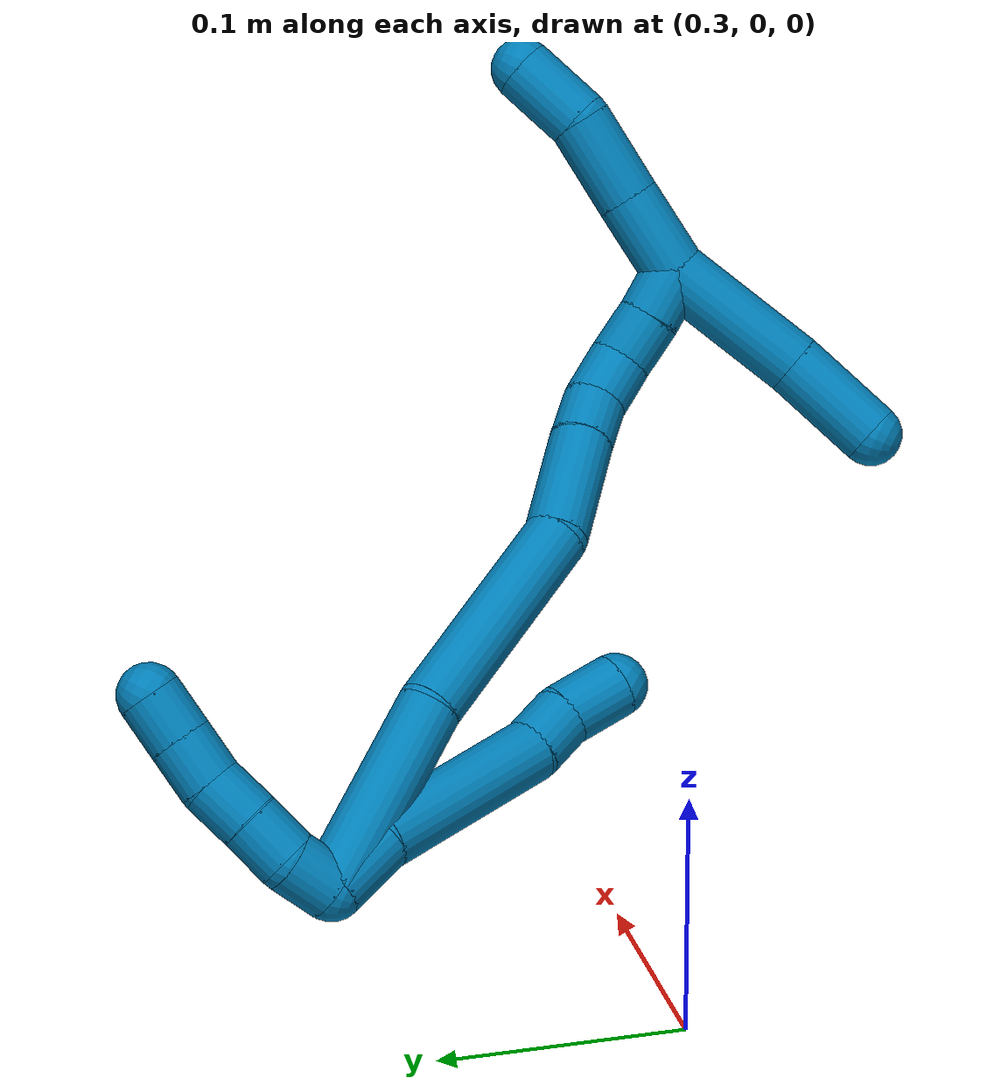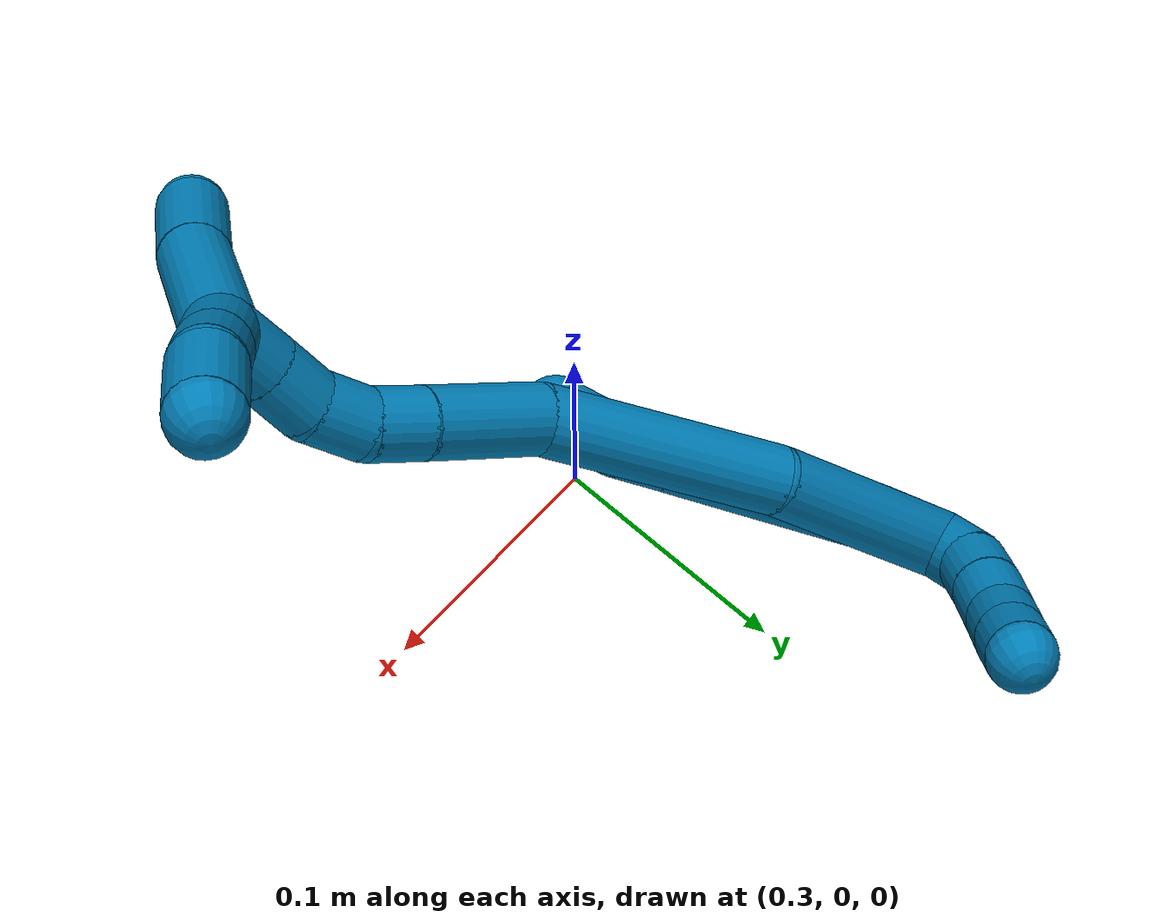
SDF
<sdf version="1.7">
 <world name="default">
  <model name="9">
   <static>0</static>
   <link name="9">
    <collision name="collision-cylinder-e_1_2_8">
     <pose>0.011123 -0.00804 -0.003483 1.97964 0.90359 1.27299</pose>
     <geometry><cylinder><radius>0.0125</radius><length>0.02832</length></cylinder></geometry>
     <surface>
      <friction><ode><mu>1.16</mu><mu2>1.16</mu2><slip1>0</slip1><slip2>0</slip2></ode></friction>
      <contact><ode><kp>1e+06</kp><kd>1</kd><max_vel>0</max_vel><min_depth>0.001</min_depth></ode></contact>
     </surface>
    </collision>
    <visual name="visual-cylinder-e_1_2_8">
     <pose>0.011123 -0.00804 -0.003483 1.97964 0.90359 1.27299</pose>
     <geometry><cylinder><radius>0.0125</radius><length>0.02832</length></cylinder></geometry>
     <material><ambient>0 0.490196 0.709804 1</ambient></material>
    </visual>
    <collision name="collision-cylinder-e_2_8_9">
     <pose>0.054897 -0.029359 -0.021715 2.40855 1.02464 1.94376</pose>
     <geometry><cylinder><radius>0.0125</radius><length>0.076418</length></cylinder></geometry>
     <surface>
      <friction><ode><mu>1.16</mu><mu2>1.16</mu2><slip1>0</slip1><slip2>0</slip2></ode></friction>
      <contact><ode><kp>1e+06</kp><kd>1</kd><max_vel>0</max_vel><min_depth>0.001</min_depth></ode></contact>
     </surface>
    </collision>
    <visual name="visual-cylinder-e_2_8_9">
     <pose>0.054897 -0.029359 -0.021715 2.40855 1.02464 1.94376</pose>
     <geometry><cylinder><radius>0.0125</radius><length>0.076418</length></cylinder></geometry>
     <material><ambient>0 0.490196 0.709804 1</ambient></material>
    </visual>
    <collision name="collision-cylinder-e_3_9_10">
     <pose>0.096024 -0.047751 -0.038343 1.92307 0.999717 1.32809</pose>
     <geometry><cylinder><radius>0.0125</radius><length>0.02015</length></cylinder></geometry>
     <surface>
      <friction><ode><mu>1.16</mu><mu2>1.16</mu2><slip1>0</slip1><slip2>0</slip2></ode></friction>
      <contact><ode><kp>1e+06</kp><kd>1</kd><max_vel>0</max_vel><min_depth>0.001</min_depth></ode></contact>
     </surface>
    </collision>
    <visual name="visual-cylinder-e_3_9_10">
     <pose>0.096024 -0.047751 -0.038343 1.92307 0.999717 1.32809</pose>
     <geometry><cylinder><radius>0.0125</radius><length>0.02015</length></cylinder></geometry>
     <material><ambient>0 0.490196 0.709804 1</ambient></material>
    </visual>
    <collision name="collision-cylinder-e_4_10_6">
     <pose>0.113672 -0.059099 -0.046107 2.32719 0.818967 1.57706</pose>
     <geometry><cylinder><radius>0.0125</radius><length>0.025112</length></cylinder></geometry>
     <surface>
      <friction><ode><mu>1.16</mu><mu2>1.16</mu2><slip1>0</slip1><slip2>0</slip2></ode></friction>
      <contact><ode><kp>1e+06</kp><kd>1</kd><max_vel>0</max_vel><min_depth>0.001</min_depth></ode></contact>
     </surface>
    </collision>
    <visual name="visual-cylinder-e_4_10_6">
     <pose>0.113672 -0.059099 -0.046107 2.32719 0.818967 1.57706</pose>
     <geometry><cylinder><radius>0.0125</radius><length>0.025112</length></cylinder></geometry>
     <material><ambient>0 0.490196 0.709804 1</ambient></material>
    </visual>
    <collision name="collision-cylinder-e_1_2_11">
     <pose>-0.002938 -0.003001 0.009075 0.319331 -0.298206 -0.048372</pose>
     <geometry><cylinder><radius>0.0125</radius><length>0.02</length></cylinder></geometry>
     <surface>
      <friction><ode><mu>1.16</mu><mu2>1.16</mu2><slip1>0</slip1><slip2>0</slip2></ode></friction>
      <contact><ode><kp>1e+06</kp><kd>1</kd><max_vel>0</max_vel><min_depth>0.001</min_depth></ode></contact>
     </surface>
    </collision>
    <visual name="visual-cylinder-e_1_2_11">
     <pose>-0.002938 -0.003001 0.009075 0.319331 -0.298206 -0.048372</pose>
     <geometry><cylinder><radius>0.0125</radius><length>0.02</length></cylinder></geometry>
     <material><ambient>0 0.490196 0.709804 1</ambient></material>
    </visual>
    <collision name="collision-cylinder-e_2_11_12">
     <pose>-0.005525 -0.009477 0.027521 0.355158 0.035071 0.006295</pose>
     <geometry><cylinder><radius>0.0125</radius><length>0.02</length></cylinder></geometry>
     <surface>
      <friction><ode><mu>1.16</mu><mu2>1.16</mu2><slip1>0</slip1><slip2>0</slip2></ode></friction>
      <contact><ode><kp>1e+06</kp><kd>1</kd><max_vel>0</max_vel><min_depth>0.001</min_depth></ode></contact>
     </surface>
    </collision>
    <visual name="visual-cylinder-e_2_11_12">
     <pose>-0.005525 -0.009477 0.027521 0.355158 0.035071 0.006295</pose>
     <geometry><cylinder><radius>0.0125</radius><length>0.02</length></cylinder></geometry>
     <material><ambient>0 0.490196 0.709804 1</ambient></material>
    </visual>
    <collision name="collision-cylinder-e_3_12_13">
     <pose>-0.00453 -0.0159 0.046425 0.299871 0.064559 0.009756</pose>
     <geometry><cylinder><radius>0.0125</radius><length>0.02</length></cylinder></geometry>
     <surface>
      <friction><ode><mu>1.16</mu><mu2>1.16</mu2><slip1>0</slip1><slip2>0</slip2></ode></friction>
      <contact><ode><kp>1e+06</kp><kd>1</kd><max_vel>0</max_vel><min_depth>0.001</min_depth></ode></contact>
     </surface>
    </collision>
    <visual name="visual-cylinder-e_3_12_13">
     <pose>-0.00453 -0.0159 0.046425 0.299871 0.064559 0.009756</pose>
     <geometry><cylinder><radius>0.0125</radius><length>0.02</length></cylinder></geometry>
     <material><ambient>0 0.490196 0.709804 1</ambient></material>
    </visual>
    <collision name="collision-cylinder-e_4_13_14">
     <pose>-0.002668 -0.023636 0.064653 0.503469 0.12193 0.031396</pose>
     <geometry><cylinder><radius>0.0125</radius><length>0.02</length></cylinder></geometry>
     <surface>
      <friction><ode><mu>1.16</mu><mu2>1.16</mu2><slip1>0</slip1><slip2>0</slip2></ode></friction>
      <contact><ode><kp>1e+06</kp><kd>1</kd><max_vel>0</max_vel><min_depth>0.001</min_depth></ode></contact>
     </surface>
    </collision>
    <visual name="visual-cylinder-e_4_13_14">
     <pose>-0.002668 -0.023636 0.064653 0.503469 0.12193 0.031396</pose>
     <geometry><cylinder><radius>0.0125</radius><length>0.02</length></cylinder></geometry>
     <material><ambient>0 0.490196 0.709804 1</ambient></material>
    </visual>
    <collision name="collision-cylinder-e_5_14_5">
     <pose>-0.000447 -0.033344 0.081996 0.517073 0.100702 0.026652</pose>
     <geometry><cylinder><radius>0.0125</radius><length>0.02</length></cylinder></geometry>
     <surface>
      <friction><ode><mu>1.16</mu><mu2>1.16</mu2><slip1>0</slip1><slip2>0</slip2></ode></friction>
      <contact><ode><kp>1e+06</kp><kd>1</kd><max_vel>0</max_vel><min_depth>0.001</min_depth></ode></contact>
     </surface>
    </collision>
    <visual name="visual-cylinder-e_5_14_5">
     <pose>-0.000447 -0.033344 0.081996 0.517073 0.100702 0.026652</pose>
     <geometry><cylinder><radius>0.0125</radius><length>0.02</length></cylinder></geometry>
     <material><ambient>0 0.490196 0.709804 1</ambient></material>
    </visual>
    <collision name="collision-cylinder-e_1_2_15">
     <pose>0.028545 -0.028099 0.000503 1.55291 0.793186 0.780517</pose>
     <geometry><cylinder><radius>0.0125</radius><length>0.080115</length></cylinder></geometry>
     <surface>
      <friction><ode><mu>1.16</mu><mu2>1.16</mu2><slip1>0</slip1><slip2>0</slip2></ode></friction>
      <contact><ode><kp>1e+06</kp><kd>1</kd><max_vel>0</max_vel><min_depth>0.001</min_depth></ode></contact>
     </surface>
    </collision>
    <visual name="visual-cylinder-e_1_2_15">
     <pose>0.028545 -0.028099 0.000503 1.55291 0.793186 0.780517</pose>
     <geometry><cylinder><radius>0.0125</radius><length>0.080115</length></cylinder></geometry>
     <material><ambient>0 0.490196 0.709804 1</ambient></material>
    </visual>
    <collision name="collision-cylinder-e_2_15_16">
     <pose>0.094853 -0.081187 -0.003082 1.73294 0.980124 1.12125</pose>
     <geometry><cylinder><radius>0.0125</radius><length>0.090934</length></cylinder></geometry>
     <surface>
      <friction><ode><mu>1.16</mu><mu2>1.16</mu2><slip1>0</slip1><slip2>0</slip2></ode></friction>
      <contact><ode><kp>1e+06</kp><kd>1</kd><max_vel>0</max_vel><min_depth>0.001</min_depth></ode></contact>
     </surface>
    </collision>
    <visual name="visual-cylinder-e_2_15_16">
     <pose>0.094853 -0.081187 -0.003082 1.73294 0.980124 1.12125</pose>
     <geometry><cylinder><radius>0.0125</radius><length>0.090934</length></cylinder></geometry>
     <material><ambient>0 0.490196 0.709804 1</ambient></material>
    </visual>
    <collision name="collision-cylinder-e_3_16_17">
     <pose>0.151939 -0.117262 -0.001738 1.11515 1.0023 0.658331</pose>
     <geometry><cylinder><radius>0.0125</radius><length>0.045859</length></cylinder></geometry>
     <surface>
      <friction><ode><mu>1.16</mu><mu2>1.16</mu2><slip1>0</slip1><slip2>0</slip2></ode></friction>
      <contact><ode><kp>1e+06</kp><kd>1</kd><max_vel>0</max_vel><min_depth>0.001</min_depth></ode></contact>
     </surface>
    </collision>
    <visual name="visual-cylinder-e_3_16_17">
     <pose>0.151939 -0.117262 -0.001738 1.11515 1.0023 0.658331</pose>
     <geometry><cylinder><radius>0.0125</radius><length>0.045859</length></cylinder></geometry>
     <material><ambient>0 0.490196 0.709804 1</ambient></material>
    </visual>
    <collision name="collision-cylinder-e_4_17_18">
     <pose>0.180326 -0.133173 0.005673 1.18175 1.04862 0.740121</pose>
     <geometry><cylinder><radius>0.0125</radius><length>0.020915</length></cylinder></geometry>
     <surface>
      <friction><ode><mu>1.16</mu><mu2>1.16</mu2><slip1>0</slip1><slip2>0</slip2></ode></friction>
      <contact><ode><kp>1e+06</kp><kd>1</kd><max_vel>0</max_vel><min_depth>0.001</min_depth></ode></contact>
     </surface>
    </collision>
    <visual name="visual-cylinder-e_4_17_18">
     <pose>0.180326 -0.133173 0.005673 1.18175 1.04862 0.740121</pose>
     <geometry><cylinder><radius>0.0125</radius><length>0.020915</length></cylinder></geometry>
     <material><ambient>0 0.490196 0.709804 1</ambient></material>
    </visual>
    <collision name="collision-cylinder-e_5_18_19">
     <pose>0.197096 -0.145038 0.007352 1.61326 0.830144 0.861941</pose>
     <geometry><cylinder><radius>0.0125</radius><length>0.020882</length></cylinder></geometry>
     <surface>
      <friction><ode><mu>1.16</mu><mu2>1.16</mu2><slip1>0</slip1><slip2>0</slip2></ode></friction>
      <contact><ode><kp>1e+06</kp><kd>1</kd><max_vel>0</max_vel><min_depth>0.001</min_depth></ode></contact>
     </surface>
    </collision>
    <visual name="visual-cylinder-e_5_18_19">
     <pose>0.197096 -0.145038 0.007352 1.61326 0.830144 0.861941</pose>
     <geometry><cylinder><radius>0.0125</radius><length>0.020882</length></cylinder></geometry>
     <material><ambient>0 0.490196 0.709804 1</ambient></material>
    </visual>
    <collision name="collision-cylinder-e_6_19_20">
     <pose>0.209884 -0.160886 0.005768 1.71569 0.518768 0.595538</pose>
     <geometry><cylinder><radius>0.0125</radius><length>0.020501</length></cylinder></geometry>
     <surface>
      <friction><ode><mu>1.16</mu><mu2>1.16</mu2><slip1>0</slip1><slip2>0</slip2></ode></friction>
      <contact><ode><kp>1e+06</kp><kd>1</kd><max_vel>0</max_vel><min_depth>0.001</min_depth></ode></contact>
     </surface>
    </collision>
    <visual name="visual-cylinder-e_6_19_20">
     <pose>0.209884 -0.160886 0.005768 1.71569 0.518768 0.595538</pose>
     <geometry><cylinder><radius>0.0125</radius><length>0.020501</length></cylinder></geometry>
     <material><ambient>0 0.490196 0.709804 1</ambient></material>
    </visual>
    <collision name="collision-cylinder-e_7_20_1">
     <pose>0.220038 -0.178759 0.00404 1.61953 0.509593 0.533885</pose>
     <geometry><cylinder><radius>0.0125</radius><length>0.020794</length></cylinder></geometry>
     <surface>
      <friction><ode><mu>1.16</mu><mu2>1.16</mu2><slip1>0</slip1><slip2>0</slip2></ode></friction>
      <contact><ode><kp>1e+06</kp><kd>1</kd><max_vel>0</max_vel><min_depth>0.001</min_depth></ode></contact>
     </surface>
    </collision>
    <visual name="visual-cylinder-e_7_20_1">
     <pose>0.220038 -0.178759 0.00404 1.61953 0.509593 0.533885</pose>
     <geometry><cylinder><radius>0.0125</radius><length>0.020794</length></cylinder></geometry>
     <material><ambient>0 0.490196 0.709804 1</ambient></material>
    </visual>
    <collision name="collision-cylinder-e_1_1_21">
     <pose>0.227046 -0.180208 -0.024958 -2.88095 0.065411 -0.489255</pose>
     <geometry><cylinder><radius>0.0125</radius><length>0.059234</length></cylinder></geometry>
     <surface>
      <friction><ode><mu>1.16</mu><mu2>1.16</mu2><slip1>0</slip1><slip2>0</slip2></ode></friction>
      <contact><ode><kp>1e+06</kp><kd>1</kd><max_vel>0</max_vel><min_depth>0.001</min_depth></ode></contact>
     </surface>
    </collision>
    <visual name="visual-cylinder-e_1_1_21">
     <pose>0.227046 -0.180208 -0.024958 -2.88095 0.065411 -0.489255</pose>
     <geometry><cylinder><radius>0.0125</radius><length>0.059234</length></cylinder></geometry>
     <material><ambient>0 0.490196 0.709804 1</ambient></material>
    </visual>
    <collision name="collision-cylinder-e_2_21_4">
     <pose>0.228093 -0.166708 -0.073008 -2.84847 -0.043601 0.293287</pose>
     <geometry><cylinder><radius>0.0125</radius><length>0.040766</length></cylinder></geometry>
     <surface>
      <friction><ode><mu>1.16</mu><mu2>1.16</mu2><slip1>0</slip1><slip2>0</slip2></ode></friction>
      <contact><ode><kp>1e+06</kp><kd>1</kd><max_vel>0</max_vel><min_depth>0.001</min_depth></ode></contact>
     </surface>
    </collision>
    <visual name="visual-cylinder-e_2_21_4">
     <pose>0.228093 -0.166708 -0.073008 -2.84847 -0.043601 0.293287</pose>
     <geometry><cylinder><radius>0.0125</radius><length>0.040766</length></cylinder></geometry>
     <material><ambient>0 0.490196 0.709804 1</ambient></material>
    </visual>
    <collision name="collision-cylinder-e_1_1_22">
     <pose>0.226146 -0.196988 0.017794 0.573219 0.061264 0.018061</pose>
     <geometry><cylinder><radius>0.0125</radius><length>0.033857</length></cylinder></geometry>
     <surface>
      <friction><ode><mu>1.16</mu><mu2>1.16</mu2><slip1>0</slip1><slip2>0</slip2></ode></friction>
      <contact><ode><kp>1e+06</kp><kd>1</kd><max_vel>0</max_vel><min_depth>0.001</min_depth></ode></contact>
     </surface>
    </collision>
    <visual name="visual-cylinder-e_1_1_22">
     <pose>0.226146 -0.196988 0.017794 0.573219 0.061264 0.018061</pose>
     <geometry><cylinder><radius>0.0125</radius><length>0.033857</length></cylinder></geometry>
     <material><ambient>0 0.490196 0.709804 1</ambient></material>
    </visual>
    <collision name="collision-cylinder-e_2_22_23">
     <pose>0.227915 -0.216248 0.0468 0.598376 0.040861 0.012605</pose>
     <geometry><cylinder><radius>0.0125</radius><length>0.035878</length></cylinder></geometry>
     <surface>
      <friction><ode><mu>1.16</mu><mu2>1.16</mu2><slip1>0</slip1><slip2>0</slip2></ode></friction>
      <contact><ode><kp>1e+06</kp><kd>1</kd><max_vel>0</max_vel><min_depth>0.001</min_depth></ode></contact>
     </surface>
    </collision>
    <visual name="visual-cylinder-e_2_22_23">
     <pose>0.227915 -0.216248 0.0468 0.598376 0.040861 0.012605</pose>
     <geometry><cylinder><radius>0.0125</radius><length>0.035878</length></cylinder></geometry>
     <material><ambient>0 0.490196 0.709804 1</ambient></material>
    </visual>
    <collision name="collision-cylinder-e_3_23_3">
     <pose>0.229976 -0.23041 0.076125 0.273077 0.08784 0.012076</pose>
     <geometry><cylinder><radius>0.0125</radius><length>0.030265</length></cylinder></geometry>
     <surface>
      <friction><ode><mu>1.16</mu><mu2>1.16</mu2><slip1>0</slip1><slip2>0</slip2></ode></friction>
      <contact><ode><kp>1e+06</kp><kd>1</kd><max_vel>0</max_vel><min_depth>0.001</min_depth></ode></contact>
     </surface>
    </collision>
    <visual name="visual-cylinder-e_3_23_3">
     <pose>0.229976 -0.23041 0.076125 0.273077 0.08784 0.012076</pose>
     <geometry><cylinder><radius>0.0125</radius><length>0.030265</length></cylinder></geometry>
     <material><ambient>0 0.490196 0.709804 1</ambient></material>
    </visual>
    <collision name="collision-sphere-3">
     <pose>0.231303 -0.234476 0.090641 0 -0 0</pose>
     <geometry><sphere><radius>0.0125</radius></sphere></geometry>
     <surface>
      <friction><ode><mu>1.16</mu><mu2>1.16</mu2><slip1>0</slip1><slip2>0</slip2></ode></friction>
      <contact><ode><kp>1e+06</kp><kd>1</kd><max_vel>0</max_vel><min_depth>0.001</min_depth></ode></contact>
     </surface>
    </collision>
    <visual name="visual-sphere-3">
     <pose>0.231303 -0.234476 0.090641 0 -0 0</pose>
     <geometry><sphere><radius>0.0125</radius></sphere></geometry>
     <material><ambient>0 0.490196 0.709804 1</ambient></material>
    </visual>
    <collision name="collision-sphere-23">
     <pose>0.228648 -0.226345 0.061609 0 -0 0</pose>
     <geometry><sphere><radius>0.0125</radius></sphere></geometry>
     <surface>
      <friction><ode><mu>1.16</mu><mu2>1.16</mu2><slip1>0</slip1><slip2>0</slip2></ode></friction>
      <contact><ode><kp>1e+06</kp><kd>1</kd><max_vel>0</max_vel><min_depth>0.001</min_depth></ode></contact>
     </surface>
    </collision>
    <visual name="visual-sphere-23">
     <pose>0.228648 -0.226345 0.061609 0 -0 0</pose>
     <geometry><sphere><radius>0.0125</radius></sphere></geometry>
     <material><ambient>0 0.490196 0.709804 1</ambient></material>
    </visual>
    <collision name="collision-sphere-22">
     <pose>0.227183 -0.206152 0.03199 0 -0 0</pose>
     <geometry><sphere><radius>0.0125</radius></sphere></geometry>
     <surface>
      <friction><ode><mu>1.16</mu><mu2>1.16</mu2><slip1>0</slip1><slip2>0</slip2></ode></friction>
      <contact><ode><kp>1e+06</kp><kd>1</kd><max_vel>0</max_vel><min_depth>0.001</min_depth></ode></contact>
     </surface>
    </collision>
    <visual name="visual-sphere-22">
     <pose>0.227183 -0.206152 0.03199 0 -0 0</pose>
     <geometry><sphere><radius>0.0125</radius></sphere></geometry>
     <material><ambient>0 0.490196 0.709804 1</ambient></material>
    </visual>
    <collision name="collision-sphere-4">
     <pose>0.227205 -0.160825 -0.092503 0 -0 0</pose>
     <geometry><sphere><radius>0.0125</radius></sphere></geometry>
     <surface>
      <friction><ode><mu>1.16</mu><mu2>1.16</mu2><slip1>0</slip1><slip2>0</slip2></ode></friction>
      <contact><ode><kp>1e+06</kp><kd>1</kd><max_vel>0</max_vel><min_depth>0.001</min_depth></ode></contact>
     </surface>
    </collision>
    <visual name="visual-sphere-4">
     <pose>0.227205 -0.160825 -0.092503 0 -0 0</pose>
     <geometry><sphere><radius>0.0125</radius></sphere></geometry>
     <material><ambient>0 0.490196 0.709804 1</ambient></material>
    </visual>
    <collision name="collision-sphere-21">
     <pose>0.228981 -0.172592 -0.053513 0 -0 0</pose>
     <geometry><sphere><radius>0.0125</radius></sphere></geometry>
     <surface>
      <friction><ode><mu>1.16</mu><mu2>1.16</mu2><slip1>0</slip1><slip2>0</slip2></ode></friction>
      <contact><ode><kp>1e+06</kp><kd>1</kd><max_vel>0</max_vel><min_depth>0.001</min_depth></ode></contact>
     </surface>
    </collision>
    <visual name="visual-sphere-21">
     <pose>0.228981 -0.172592 -0.053513 0 -0 0</pose>
     <geometry><sphere><radius>0.0125</radius></sphere></geometry>
     <material><ambient>0 0.490196 0.709804 1</ambient></material>
    </visual>
    <collision name="collision-sphere-1">
     <pose>0.22511 -0.187824 0.003598 0 -0 0</pose>
     <geometry><sphere><radius>0.0125</radius></sphere></geometry>
     <surface>
      <friction><ode><mu>1.16</mu><mu2>1.16</mu2><slip1>0</slip1><slip2>0</slip2></ode></friction>
      <contact><ode><kp>1e+06</kp><kd>1</kd><max_vel>0</max_vel><min_depth>0.001</min_depth></ode></contact>
     </surface>
    </collision>
    <visual name="visual-sphere-1">
     <pose>0.22511 -0.187824 0.003598 0 -0 0</pose>
     <geometry><sphere><radius>0.0125</radius></sphere></geometry>
     <material><ambient>0 0.490196 0.709804 1</ambient></material>
    </visual>
    <collision name="collision-sphere-11">
     <pose>-0.005876 -0.006002 0.018151 0 -0 0</pose>
     <geometry><sphere><radius>0.0125</radius></sphere></geometry>
     <surface>
      <friction><ode><mu>1.16</mu><mu2>1.16</mu2><slip1>0</slip1><slip2>0</slip2></ode></friction>
      <contact><ode><kp>1e+06</kp><kd>1</kd><max_vel>0</max_vel><min_depth>0.001</min_depth></ode></contact>
     </surface>
    </collision>
    <visual name="visual-sphere-11">
     <pose>-0.005876 -0.006002 0.018151 0 -0 0</pose>
     <geometry><sphere><radius>0.0125</radius></sphere></geometry>
     <material><ambient>0 0.490196 0.709804 1</ambient></material>
    </visual>
    <collision name="collision-sphere-6">
     <pose>0.122843 -0.065336 -0.051992 0 -0 0</pose>
     <geometry><sphere><radius>0.0125</radius></sphere></geometry>
     <surface>
      <friction><ode><mu>1.16</mu><mu2>1.16</mu2><slip1>0</slip1><slip2>0</slip2></ode></friction>
      <contact><ode><kp>1e+06</kp><kd>1</kd><max_vel>0</max_vel><min_depth>0.001</min_depth></ode></contact>
     </surface>
    </collision>
    <visual name="visual-sphere-6">
     <pose>0.122843 -0.065336 -0.051992 0 -0 0</pose>
     <geometry><sphere><radius>0.0125</radius></sphere></geometry>
     <material><ambient>0 0.490196 0.709804 1</ambient></material>
    </visual>
    <collision name="collision-sphere-10">
     <pose>0.104501 -0.052862 -0.040222 0 -0 0</pose>
     <geometry><sphere><radius>0.0125</radius></sphere></geometry>
     <surface>
      <friction><ode><mu>1.16</mu><mu2>1.16</mu2><slip1>0</slip1><slip2>0</slip2></ode></friction>
      <contact><ode><kp>1e+06</kp><kd>1</kd><max_vel>0</max_vel><min_depth>0.001</min_depth></ode></contact>
     </surface>
    </collision>
    <visual name="visual-sphere-10">
     <pose>0.104501 -0.052862 -0.040222 0 -0 0</pose>
     <geometry><sphere><radius>0.0125</radius></sphere></geometry>
     <material><ambient>0 0.490196 0.709804 1</ambient></material>
    </visual>
    <collision name="collision-sphere-9">
     <pose>0.087548 -0.042639 -0.036463 0 -0 0</pose>
     <geometry><sphere><radius>0.0125</radius></sphere></geometry>
     <surface>
      <friction><ode><mu>1.16</mu><mu2>1.16</mu2><slip1>0</slip1><slip2>0</slip2></ode></friction>
      <contact><ode><kp>1e+06</kp><kd>1</kd><max_vel>0</max_vel><min_depth>0.001</min_depth></ode></contact>
     </surface>
    </collision>
    <visual name="visual-sphere-9">
     <pose>0.087548 -0.042639 -0.036463 0 -0 0</pose>
     <geometry><sphere><radius>0.0125</radius></sphere></geometry>
     <material><ambient>0 0.490196 0.709804 1</ambient></material>
    </visual>
    <collision name="collision-sphere-2">
     <geometry><sphere><radius>0.0125</radius></sphere></geometry>
     <surface>
      <friction><ode><mu>1.16</mu><mu2>1.16</mu2><slip1>0</slip1><slip2>0</slip2></ode></friction>
      <contact><ode><kp>1e+06</kp><kd>1</kd><max_vel>0</max_vel><min_depth>0.001</min_depth></ode></contact>
     </surface>
    </collision>
    <visual name="visual-sphere-2">
     <geometry><sphere><radius>0.0125</radius></sphere></geometry>
     <material><ambient>0 0.490196 0.709804 1</ambient></material>
    </visual>
    <collision name="collision-sphere-19">
     <pose>0.204801 -0.152077 0.007053 0 -0 0</pose>
     <geometry><sphere><radius>0.0125</radius></sphere></geometry>
     <surface>
      <friction><ode><mu>1.16</mu><mu2>1.16</mu2><slip1>0</slip1><slip2>0</slip2></ode></friction>
      <contact><ode><kp>1e+06</kp><kd>1</kd><max_vel>0</max_vel><min_depth>0.001</min_depth></ode></contact>
     </surface>
    </collision>
    <visual name="visual-sphere-19">
     <pose>0.204801 -0.152077 0.007053 0 -0 0</pose>
     <geometry><sphere><radius>0.0125</radius></sphere></geometry>
     <material><ambient>0 0.490196 0.709804 1</ambient></material>
    </visual>
    <collision name="collision-sphere-8">
     <pose>0.022247 -0.01608 -0.006967 0 -0 0</pose>
     <geometry><sphere><radius>0.0125</radius></sphere></geometry>
     <surface>
      <friction><ode><mu>1.16</mu><mu2>1.16</mu2><slip1>0</slip1><slip2>0</slip2></ode></friction>
      <contact><ode><kp>1e+06</kp><kd>1</kd><max_vel>0</max_vel><min_depth>0.001</min_depth></ode></contact>
     </surface>
    </collision>
    <visual name="visual-sphere-8">
     <pose>0.022247 -0.01608 -0.006967 0 -0 0</pose>
     <geometry><sphere><radius>0.0125</radius></sphere></geometry>
     <material><ambient>0 0.490196 0.709804 1</ambient></material>
    </visual>
    <collision name="collision-sphere-12">
     <pose>-0.005175 -0.012952 0.036891 0 -0 0</pose>
     <geometry><sphere><radius>0.0125</radius></sphere></geometry>
     <surface>
      <friction><ode><mu>1.16</mu><mu2>1.16</mu2><slip1>0</slip1><slip2>0</slip2></ode></friction>
      <contact><ode><kp>1e+06</kp><kd>1</kd><max_vel>0</max_vel><min_depth>0.001</min_depth></ode></contact>
     </surface>
    </collision>
    <visual name="visual-sphere-12">
     <pose>-0.005175 -0.012952 0.036891 0 -0 0</pose>
     <geometry><sphere><radius>0.0125</radius></sphere></geometry>
     <material><ambient>0 0.490196 0.709804 1</ambient></material>
    </visual>
    <collision name="collision-sphere-13">
     <pose>-0.003885 -0.018848 0.055959 0 -0 0</pose>
     <geometry><sphere><radius>0.0125</radius></sphere></geometry>
     <surface>
      <friction><ode><mu>1.16</mu><mu2>1.16</mu2><slip1>0</slip1><slip2>0</slip2></ode></friction>
      <contact><ode><kp>1e+06</kp><kd>1</kd><max_vel>0</max_vel><min_depth>0.001</min_depth></ode></contact>
     </surface>
    </collision>
    <visual name="visual-sphere-13">
     <pose>-0.003885 -0.018848 0.055959 0 -0 0</pose>
     <geometry><sphere><radius>0.0125</radius></sphere></geometry>
     <material><ambient>0 0.490196 0.709804 1</ambient></material>
    </visual>
    <collision name="collision-sphere-14">
     <pose>-0.001452 -0.028425 0.073347 0 -0 0</pose>
     <geometry><sphere><radius>0.0125</radius></sphere></geometry>
     <surface>
      <friction><ode><mu>1.16</mu><mu2>1.16</mu2><slip1>0</slip1><slip2>0</slip2></ode></friction>
      <contact><ode><kp>1e+06</kp><kd>1</kd><max_vel>0</max_vel><min_depth>0.001</min_depth></ode></contact>
     </surface>
    </collision>
    <visual name="visual-sphere-14">
     <pose>-0.001452 -0.028425 0.073347 0 -0 0</pose>
     <geometry><sphere><radius>0.0125</radius></sphere></geometry>
     <material><ambient>0 0.490196 0.709804 1</ambient></material>
    </visual>
    <collision name="collision-sphere-5">
     <pose>0.000559 -0.038262 0.090644 0 -0 0</pose>
     <geometry><sphere><radius>0.0125</radius></sphere></geometry>
     <surface>
      <friction><ode><mu>1.16</mu><mu2>1.16</mu2><slip1>0</slip1><slip2>0</slip2></ode></friction>
      <contact><ode><kp>1e+06</kp><kd>1</kd><max_vel>0</max_vel><min_depth>0.001</min_depth></ode></contact>
     </surface>
    </collision>
    <visual name="visual-sphere-5">
     <pose>0.000559 -0.038262 0.090644 0 -0 0</pose>
     <geometry><sphere><radius>0.0125</radius></sphere></geometry>
     <material><ambient>0 0.490196 0.709804 1</ambient></material>
    </visual>
    <collision name="collision-sphere-15">
     <pose>0.057089 -0.056198 0.001006 0 -0 0</pose>
     <geometry><sphere><radius>0.0125</radius></sphere></geometry>
     <surface>
      <friction><ode><mu>1.16</mu><mu2>1.16</mu2><slip1>0</slip1><slip2>0</slip2></ode></friction>
      <contact><ode><kp>1e+06</kp><kd>1</kd><max_vel>0</max_vel><min_depth>0.001</min_depth></ode></contact>
     </surface>
    </collision>
    <visual name="visual-sphere-15">
     <pose>0.057089 -0.056198 0.001006 0 -0 0</pose>
     <geometry><sphere><radius>0.0125</radius></sphere></geometry>
     <material><ambient>0 0.490196 0.709804 1</ambient></material>
    </visual>
    <collision name="collision-sphere-16">
     <pose>0.132616 -0.106177 -0.00717 0 -0 0</pose>
     <geometry><sphere><radius>0.0125</radius></sphere></geometry>
     <surface>
      <friction><ode><mu>1.16</mu><mu2>1.16</mu2><slip1>0</slip1><slip2>0</slip2></ode></friction>
      <contact><ode><kp>1e+06</kp><kd>1</kd><max_vel>0</max_vel><min_depth>0.001</min_depth></ode></contact>
     </surface>
    </collision>
    <visual name="visual-sphere-16">
     <pose>0.132616 -0.106177 -0.00717 0 -0 0</pose>
     <geometry><sphere><radius>0.0125</radius></sphere></geometry>
     <material><ambient>0 0.490196 0.709804 1</ambient></material>
    </visual>
    <collision name="collision-sphere-17">
     <pose>0.171262 -0.128347 0.003694 0 -0 0</pose>
     <geometry><sphere><radius>0.0125</radius></sphere></geometry>
     <surface>
      <friction><ode><mu>1.16</mu><mu2>1.16</mu2><slip1>0</slip1><slip2>0</slip2></ode></friction>
      <contact><ode><kp>1e+06</kp><kd>1</kd><max_vel>0</max_vel><min_depth>0.001</min_depth></ode></contact>
     </surface>
    </collision>
    <visual name="visual-sphere-17">
     <pose>0.171262 -0.128347 0.003694 0 -0 0</pose>
     <geometry><sphere><radius>0.0125</radius></sphere></geometry>
     <material><ambient>0 0.490196 0.709804 1</ambient></material>
    </visual>
    <collision name="collision-sphere-18">
     <pose>0.18939 -0.137999 0.007651 0 -0 0</pose>
     <geometry><sphere><radius>0.0125</radius></sphere></geometry>
     <surface>
      <friction><ode><mu>1.16</mu><mu2>1.16</mu2><slip1>0</slip1><slip2>0</slip2></ode></friction>
      <contact><ode><kp>1e+06</kp><kd>1</kd><max_vel>0</max_vel><min_depth>0.001</min_depth></ode></contact>
     </surface>
    </collision>
    <visual name="visual-sphere-18">
     <pose>0.18939 -0.137999 0.007651 0 -0 0</pose>
     <geometry><sphere><radius>0.0125</radius></sphere></geometry>
     <material><ambient>0 0.490196 0.709804 1</ambient></material>
    </visual>
    <collision name="collision-sphere-20">
     <pose>0.214966 -0.169694 0.004482 0 -0 0</pose>
     <geometry><sphere><radius>0.0125</radius></sphere></geometry>
     <surface>
      <friction><ode><mu>1.16</mu><mu2>1.16</mu2><slip1>0</slip1><slip2>0</slip2></ode></friction>
      <contact><ode><kp>1e+06</kp><kd>1</kd><max_vel>0</max_vel><min_depth>0.001</min_depth></ode></contact>
     </surface>
    </collision>
    <visual name="visual-sphere-20">
     <pose>0.214966 -0.169694 0.004482 0 -0 0</pose>
     <geometry><sphere><radius>0.0125</radius></sphere></geometry>
     <material><ambient>0 0.490196 0.709804 1</ambient></material>
    </visual>
    <inertial>
     <pose>0.118886 -0.097783 0.001587 0 -0 0</pose>
     <mass>0.75</mass>
     <inertia>
      <ixx>0.000191</ixx>
      <ixy>0</ixy>
      <ixz>0</ixz>
      <iyy>0.000164</iyy>
      <iyz>0</iyz>
      <izz>-4.2e-05</izz>
     </inertia>
    </inertial>
   </link>
   <pose>0.2658 0.147828 0.098292 -1.22045 0.046907 -0.570333</pose>
  </model>
 </world>
</sdf>
